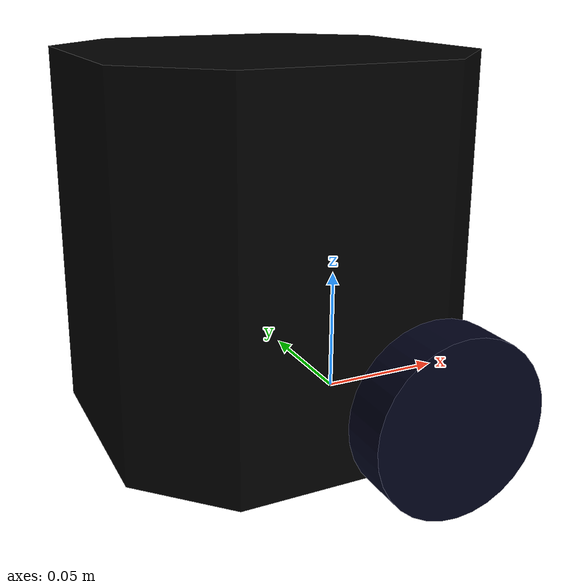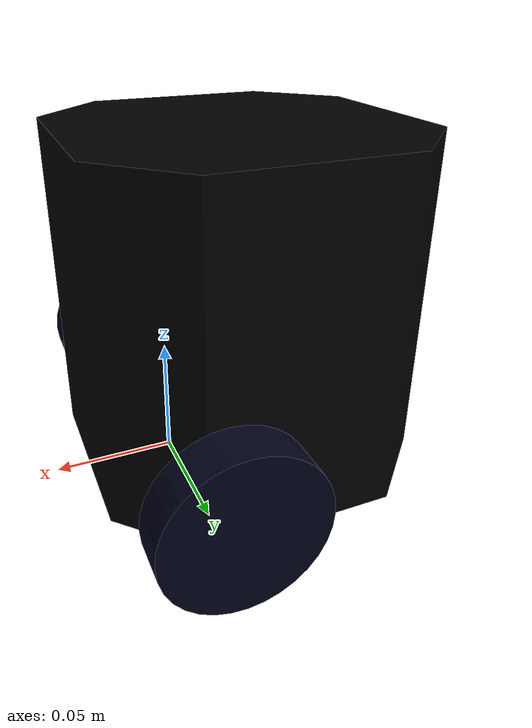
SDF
<?xml version="1.0" ?>
<sdf version="1.5">

  <model name="turtlebot3_burger">

    <pose>0.0 0.0 0.0 0.0 0.0 0.0</pose>

    <link name="base_footprint"/>

    <link name="base_link">

      <inertial>
        <pose>-0.032 0 0.070 0 0 0</pose>
        <inertia>
          <ixx>0.001</ixx>
          <ixy>0.000</ixy>
          <ixz>0.000</ixz>
          <iyy>0.001</iyy>
          <iyz>0.000</iyz>
          <izz>0.001</izz>
        </inertia>
        <mass>1.0</mass>
      </inertial>

      <collision name="base_collision">
        <pose>-0.032 0 0.070 0 0 0</pose>
        <geometry>
          <box>
            <size>0.140 0.140 0.140</size>
          </box>
        </geometry>
      </collision>

      <visual name="base_visual">
        <pose>-0.032 0 0 0 0 0</pose>
        <geometry>
          <mesh>
            <uri>model://turtlebot3_burger/meshes/burger_base.dae</uri>
            <scale>0.001 0.001 0.001</scale>
          </mesh>
        </geometry>
      </visual>
    </link>

    <link name="wheel_left_link">

      <inertial>
        <pose>0 0.08 0.023 -1.57 0 0</pose>
        <inertia>
          <ixx>0.001</ixx>
          <ixy>0.000</ixy>
          <ixz>0.000</ixz>
          <iyy>0.001</iyy>
          <iyz>0.000</iyz>
          <izz>0.001</izz>
        </inertia>
        <mass>0.1</mass>
      </inertial>

      <collision name="wheel_left_collision">
        <pose>0 0.08 0.023 -1.57 0 0</pose>
        <geometry>
          <cylinder>
            <radius>0.033</radius>
            <length>0.018</length>
          </cylinder>
        </geometry>
        <surface>
          <!-- This friction pamareter don't contain reliable data!! -->
          <friction>
            <ode>
              <mu>100000.0</mu>
              <mu2>100000.0</mu2>
              <fdir1>0 0 0</fdir1>
              <slip1>0.0</slip1>
              <slip2>0.0</slip2>
            </ode>
          </friction>
          <contact>
            <ode>
              <soft_cfm>0</soft_cfm>
              <soft_erp>0.2</soft_erp>
              <kp>1e+5</kp>
              <kd>1</kd>
              <max_vel>0.01</max_vel>
              <min_depth>0.001</min_depth>
            </ode>
          </contact>
        </surface>
      </collision>

      <visual name="wheel_left_visual">
        <pose>0 0.08 0.023 0 0 0</pose>
        <geometry>
          <mesh>
            <uri>model://turtlebot3_burger/meshes/tire.dae</uri>
            <scale>0.001 0.001 0.001</scale>
          </mesh>
        </geometry>
      </visual>
    </link>

    <link name="wheel_right_link">

      <inertial>
        <pose>0.0 -0.08 0.023 -1.57 0 0</pose>
        <inertia>
          <ixx>0.001</ixx>
          <ixy>0.000</ixy>
          <ixz>0.000</ixz>
          <iyy>0.001</iyy>
          <iyz>0.000</iyz>
          <izz>0.001</izz>
        </inertia>
        <mass>0.1</mass>
      </inertial>

      <collision name="wheel_right_collision">
        <pose>0.0 -0.08 0.023 -1.57 0 0</pose>
        <geometry>
          <cylinder>
            <radius>0.033</radius>
            <length>0.018</length>
          </cylinder>
        </geometry>
        <surface>
          <!-- This friction pamareter don't contain reliable data!! -->
          <friction>
            <ode>
              <mu>100000.0</mu>
              <mu2>100000.0</mu2>
              <fdir1>0 0 0</fdir1>
              <slip1>0.0</slip1>
              <slip2>0.0</slip2>
            </ode>
          </friction>
          <contact>
            <ode>
              <soft_cfm>0</soft_cfm>
              <soft_erp>0.2</soft_erp>
              <kp>1e+5</kp>
              <kd>1</kd>
              <max_vel>0.01</max_vel>
              <min_depth>0.001</min_depth>
            </ode>
          </contact>
        </surface>
      </collision>

      <visual name="wheel_right_visual">
        <pose>0.0 -0.08 0.023 0 0 0</pose>
        <geometry>
          <mesh>
            <uri>model://turtlebot3_burger/meshes/tire.dae</uri>
            <scale>0.001 0.001 0.001</scale>
          </mesh>
        </geometry>
      </visual>
    </link>

    <link name='caster_back_link'>
      <pose>-0.081 0 -0.004 0 0 0</pose>
      <inertial>
        <mass>0.001</mass>
        <inertia>
          <ixx>0.00001</ixx>
          <ixy>0.000</ixy>
          <ixz>0.000</ixz>
          <iyy>0.00001</iyy>
          <iyz>0.000</iyz>
          <izz>0.00001</izz>
        </inertia>
      </inertial>
      <collision name='collision'>
        <geometry>
          <sphere>
            <radius>0.005000</radius>
          </sphere>
        </geometry>
        <surface>
          <contact>
            <ode>
              <soft_cfm>0</soft_cfm>
              <soft_erp>0.2</soft_erp>
              <kp>1e+5</kp>
              <kd>1</kd>
              <max_vel>0.01</max_vel>
              <min_depth>0.001</min_depth>
            </ode>
          </contact>
        </surface>
      </collision>
    </link>

    <joint name="base_joint" type="fixed">
      <parent>base_footprint</parent>
      <child>base_link</child>
      <pose>0.0 0.0 0.010 0 0 0</pose>
    </joint>

    <joint name="wheel_left_joint" type="revolute">
      <parent>base_link</parent>
      <child>wheel_left_link</child>
      <pose>0.0 0.08 0.023 -1.57 0 0</pose>
      <axis>
        <xyz>0 0 1</xyz>
      </axis>
    </joint>

    <joint name="wheel_right_joint" type="revolute">
      <parent>base_link</parent>
      <child>wheel_right_link</child>
      <pose>0.0 -0.08 0.023 -1.57 0 0</pose>
      <axis>
        <xyz>0 0 1</xyz>
      </axis>
    </joint>

    <joint name='caster_back_joint' type='ball'>
      <parent>base_link</parent>
      <child>caster_back_link</child>
    </joint>

    <plugin name="ignition::gazebo::systems::JointStatePublisher" filename="libignition-gazebo-joint-state-publisher-system.so">
      <joint_name>wheel_left_joint</joint_name>
      <joint_name>wheel_right_joint</joint_name>
    </plugin>

    <plugin filename="ignition-gazebo-diff-drive-system" name="ignition::gazebo::systems::DiffDrive">
      <left_joint>wheel_left_joint</left_joint>
      <right_joint>wheel_right_joint</right_joint>
      <wheel_separation>0.160</wheel_separation>
      <wheel_radius>0.033</wheel_radius>
      <odom_publish_frequency>30</odom_publish_frequency>
      <topic>/cmd_vel_robot</topic>
      <odom_topic>/odom</odom_topic>
      <tf_topic>/tf</tf_topic>
    </plugin>

  </model>

</sdf>
